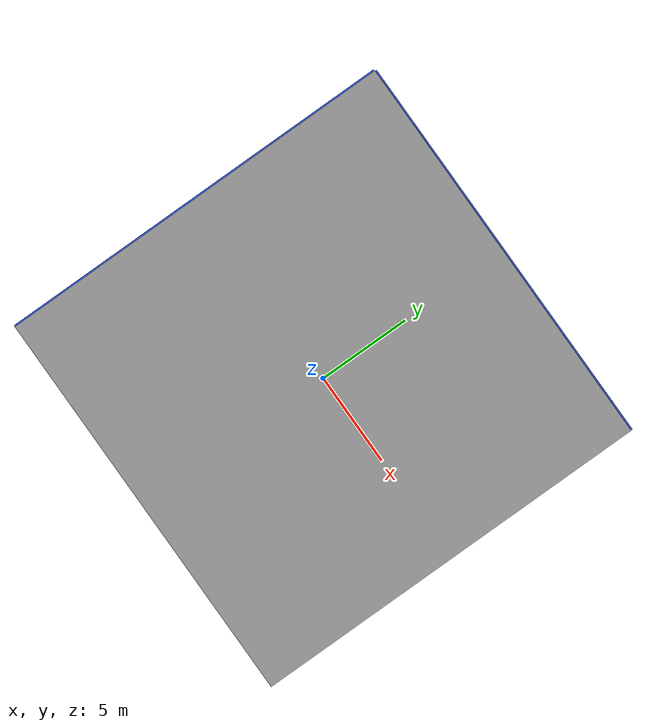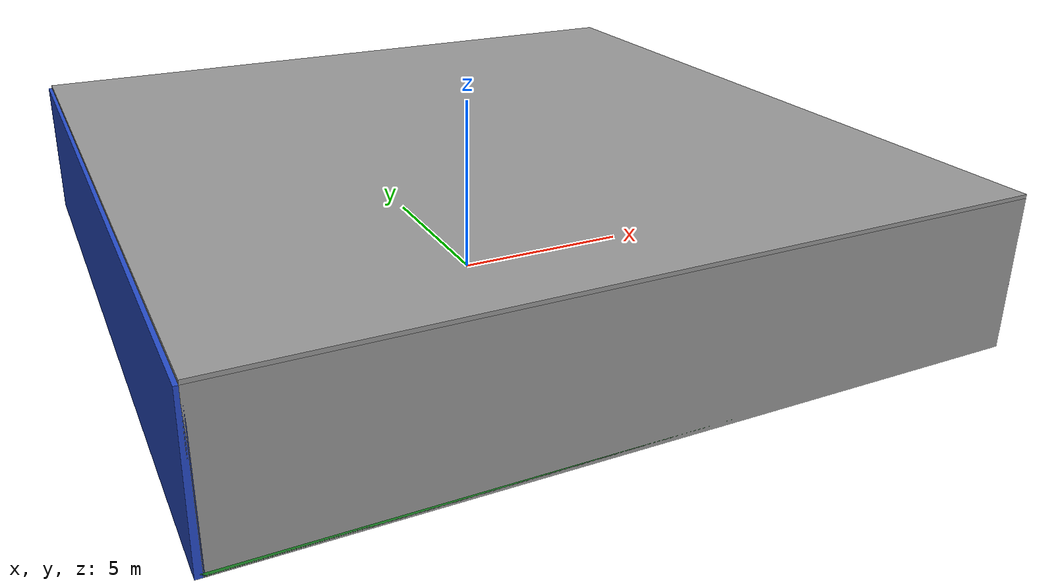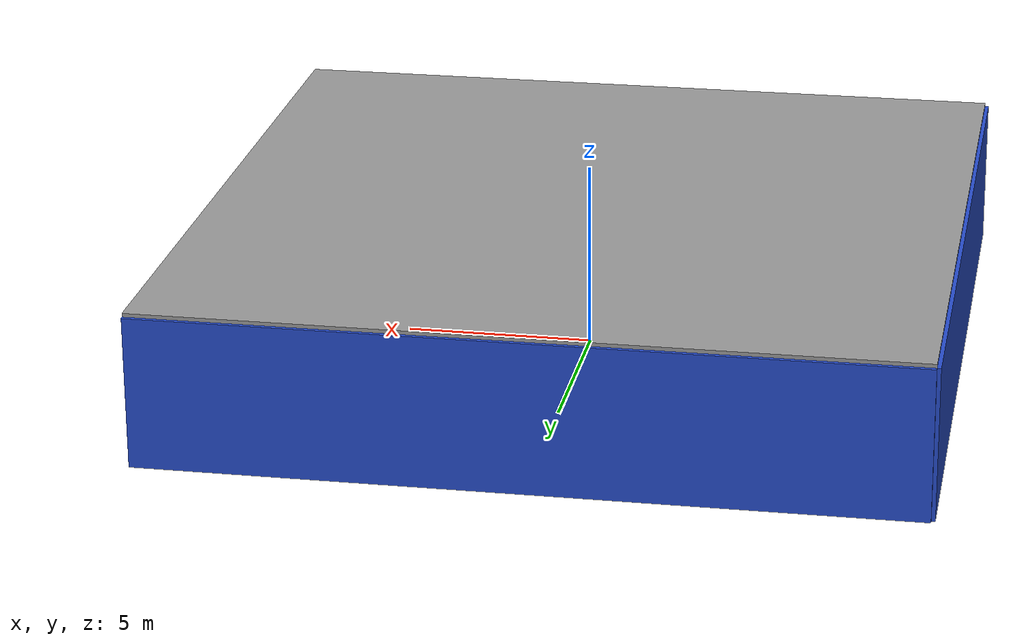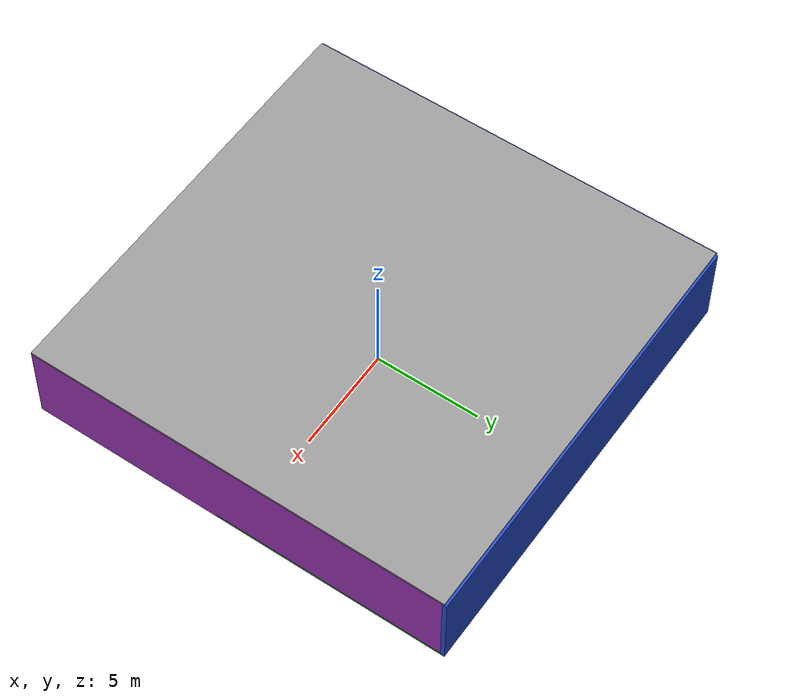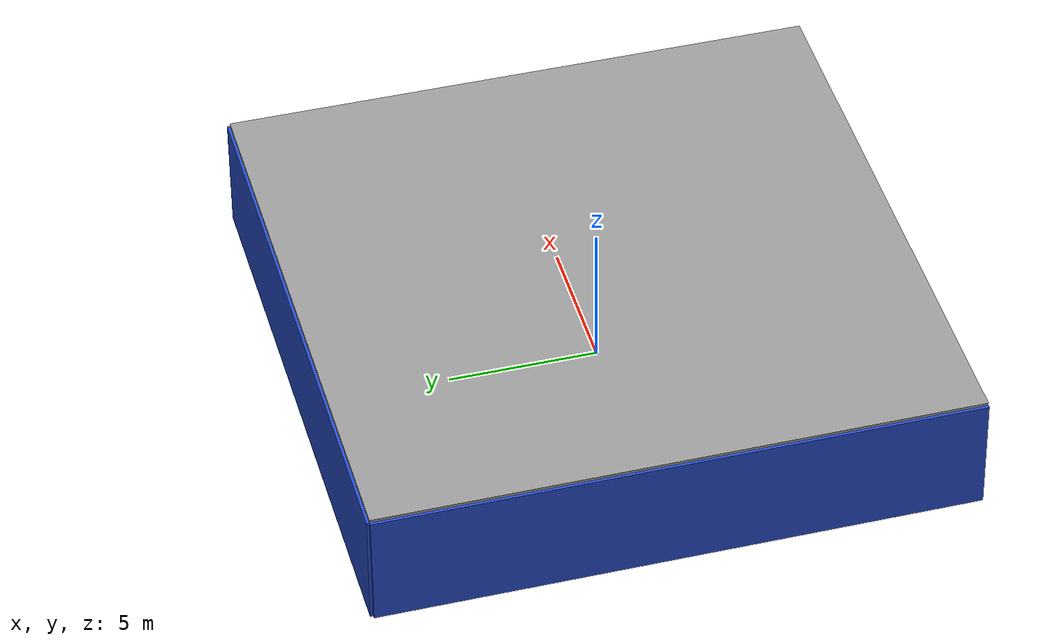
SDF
<sdf version="1.4">
 <world name="default">
  <physics type="ode">
   <max_step_size>0.001</max_step_size>
   <real_time_factor>1</real_time_factor>
   <real_time_update_rate>1000</real_time_update_rate>
   <gravity>0 0 -9.8</gravity>
  </physics>
  <scene><ambient>0.4 0.4 0.4 1</ambient><background>0.7 0.7 0.7 1</background><shadows>1</shadows></scene>
  <model name="Surrounding">
   <static>1</static>
   <link name="Ceiling">
    <collision name="Ceiling_Collision"><geometry><box><size>20 20 0.1</size></box></geometry></collision>
    <visual name="Ceiling_Visual">
     <geometry><box><size>20 20 0.1</size></box></geometry>
     <material>
      <script><uri>file://media/materials/scripts/gazebo.material</uri><name>Gazebo/GreyGradientSky</name></script>
     </material>
    </visual>
    <pose>0 0 4.05 0 0 0</pose>
   </link>
   <link name="Wall_South">
    <collision name="Wall_South_Collision">
     <geometry><box><size>20 0 4</size></box></geometry>
     <pose>0 0 2 0 -0 0</pose>
    </collision>
    <visual name="Wall_South_Visual">
     <pose>0 0 2 0 -0 0</pose>
     <geometry><box><size>20 0 4</size></box></geometry>
     <material>
      <script><uri>file://media/materials/scripts/gazebo.material</uri><name>Gazebo/GreyGradientSky</name></script>
     </material>
    </visual>
    <velocity_decay><linear>0</linear><angular>0</angular></velocity_decay>
    <pose>0 -10 0 0 -0 0</pose>
   </link>
   <link name="Wall_East">
    <collision name="Wall_21_Collision">
     <geometry><box><size>20 0 4</size></box></geometry>
     <pose>0 0 2 0 -0 0</pose>
    </collision>
    <visual name="Wall_21_Visual">
     <pose>0 0 2 0 -0 0</pose>
     <geometry><box><size>20 0 4</size></box></geometry>
     <material>
      <script><uri>file://media/materials/scripts/gazebo.material</uri><name>Gazebo/PurpleGlow</name></script>
     </material>
    </visual>
    <velocity_decay><linear>0</linear><angular>0</angular></velocity_decay>
    <pose>10 0 0 0 -0 1.5708</pose>
   </link>
   <link name="Wall_North">
    <collision name="Wall_22_Collision">
     <geometry><box><size>20 0.2 4</size></box></geometry>
     <pose>0 0 2 0 -0 0</pose>
    </collision>
    <visual name="Wall_22_Visual">
     <pose>0 0 2 0 -0 0</pose>
     <geometry><box><size>20 0.2 4</size></box></geometry>
     <material>
      <script><uri>file://media/materials/scripts/gazebo.material</uri><name>Gazebo/Blue</name></script>
     </material>
    </visual>
    <velocity_decay><linear>0</linear><angular>0</angular></velocity_decay>
    <pose>0 10 0 0 -0 0</pose>
   </link>
   <link name="Wall_West">
    <collision name="Wall_23_Collision">
     <geometry><box><size>20 0.2 4</size></box></geometry>
     <pose>0 0 2 0 -0 0</pose>
    </collision>
    <visual name="Wall_23_Visual">
     <pose>0 0 2 0 -0 0</pose>
     <geometry><box><size>20 0.2 4</size></box></geometry>
     <material>
      <script><uri>file://media/materials/scripts/gazebo.material</uri><name>Gazebo/Blue</name></script>
     </material>
    </visual>
    <velocity_decay><linear>0</linear><angular>0</angular></velocity_decay>
    <pose>-10 0 0 0 0 -1.5708</pose>
   </link>
   <link name="Ground_link">
    <collision name="collision">
     <pose>0 0 .05 0 -0 0</pose>
     <geometry><box><size>20 20 0.1</size></box></geometry>
    </collision>
    <visual name="visual">
     <pose>0 0 .05 0 -0 0</pose>
     <geometry><box><size>20 20 0.1</size></box></geometry>
     <material>
      <script><uri>file://media/materials/scripts/gazebo.material</uri><name>Gazebo/Green</name></script>
     </material>
    </visual>
   </link>
   <static>1</static>
  </model>
  <spherical_coordinates>
   <surface_model>EARTH_WGS84</surface_model>
   <latitude_deg>0</latitude_deg>
   <longitude_deg>0</longitude_deg>
   <elevation>0</elevation>
   <heading_deg>0</heading_deg>
  </spherical_coordinates>
  <light name="lightball_0" type="diffuse">
   <diffuse>0.8 0.8 0.8 1</diffuse>
   <specular>0.2 0.2 0.2 1</specular>
   <attenuation>
    <range>100</range>
    <constant>0.7</constant>
    <linear>0.01</linear>
    <quadratic>0.001</quadratic>
   </attenuation>
   <direction>-0.5 0.1 -0.9</direction>
   <pose>-6.96508146237 -3.79509964964 1.19703322617 0 0 0</pose>
  </light>
  <light name="lightball_1" type="diffuse">
   <diffuse>0.8 0.8 0.8 1</diffuse>
   <specular>0.2 0.2 0.2 1</specular>
   <attenuation>
    <range>100</range>
    <constant>0.7</constant>
    <linear>0.01</linear>
    <quadratic>0.001</quadratic>
   </attenuation>
   <direction>-0.5 0.1 -0.9</direction>
   <pose>0.504669005715 -9.80351720036 2.13400405366 0 0 0</pose>
  </light>
  <light name="lightball_2" type="diffuse">
   <diffuse>0.8 0.8 0.8 1</diffuse>
   <specular>0.2 0.2 0.2 1</specular>
   <attenuation>
    <range>100</range>
    <constant>0.7</constant>
    <linear>0.01</linear>
    <quadratic>0.001</quadratic>
   </attenuation>
   <direction>-0.5 0.1 -0.9</direction>
   <pose>-6.69450441976 -3.04275334917 0.592231045507 0 0 0</pose>
  </light>
  <light name="lightball_3" type="diffuse">
   <diffuse>0.8 0.8 0.8 1</diffuse>
   <specular>0.2 0.2 0.2 1</specular>
   <attenuation>
    <range>100</range>
    <constant>0.7</constant>
    <linear>0.01</linear>
    <quadratic>0.001</quadratic>
   </attenuation>
   <direction>-0.5 0.1 -0.9</direction>
   <pose>-0.0400253870945 -3.80046876415 3.75823307335 0 0 0</pose>
  </light>
  <light name="lightball_4" type="diffuse">
   <diffuse>0.8 0.8 0.8 1</diffuse>
   <specular>0.2 0.2 0.2 1</specular>
   <attenuation>
    <range>100</range>
    <constant>0.7</constant>
    <linear>0.01</linear>
    <quadratic>0.001</quadratic>
   </attenuation>
   <direction>-0.5 0.1 -0.9</direction>
   <pose>2.57564220693 -4.03529300041 2.46754863949 0 0 0</pose>
  </light>
  <light name="lightball_5" type="diffuse">
   <diffuse>0.8 0.8 0.8 1</diffuse>
   <specular>0.2 0.2 0.2 1</specular>
   <attenuation>
    <range>100</range>
    <constant>0.7</constant>
    <linear>0.01</linear>
    <quadratic>0.001</quadratic>
   </attenuation>
   <direction>-0.5 0.1 -0.9</direction>
   <pose>-0.957697952893 9.14843284362 1.74014965216 0 0 0</pose>
  </light>
  <include><uri>model://cabinet</uri><pose>-4.92214815048 7.42252622539 0 0 0 2.93182271262</pose></include>
  <include>
   <uri>model://construction_cone</uri>
   <pose>-0.978956090081 6.80353640626 0 0 0 0.735062247913</pose>
  </include>
  <include>
   <uri>model://construction_cone</uri>
   <pose>2.03057919425 0.854243374453 0 0 0 0.654278125154</pose>
  </include>
 </world>
</sdf>

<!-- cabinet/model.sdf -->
<sdf version="1.5">
  <model name="cabinet">
    <static>true</static>
    <link name="cabinet_bottom_plate">
      <inertial>
        <pose>0 0 -1 0 0 0</pose>
        <inertia>
          <ixx>2.050000</ixx>
          <ixy>0</ixy>
          <ixz>0</ixz>
          <iyy>2.050000</iyy>
          <iyz>0</iyz>
          <izz>2.050000</izz>
        </inertia>
        <mass>25.000000</mass>
      </inertial>
      <collision name="cabinet_bottom_plate_geom">
        <pose>0 0 0.010000 0 0 0</pose>
        <geometry>
          <box>
            <size>0.450000 0.450000 0.020000</size>
          </box>
        </geometry>
      </collision>
      <visual name="cabinet_bottom_plate_geom_visual">
        <pose>0 0 0.010000 0 0 0</pose>
        <geometry>
          <box>
            <size>0.450000 0.450000 0.020000</size>
          </box>
        </geometry>
        <material>
          <script>
            <uri>model://media/materials/scripts/gazebo.material</uri>
            <name>Gazebo/Wood</name>
          </script>
        </material>
      </visual>
      <collision name="cabinet_bottom_plate_geom_cabinet_back_plate">
        <pose>0.235000 0 0.510000 0 0 0</pose>
        <geometry>
          <box>
            <size>0.020000 0.450000 1.020000</size>
          </box>
        </geometry>
      </collision>
      <visual name="cabinet_bottom_plate_geom_cabinet_back_plate_visual">
        <pose>0.235000 0 0.510000 0 0 0</pose>
        <geometry>
          <box>
            <size>0.020000 0.450000 1.020000</size>
          </box>
        </geometry>
        <material>
          <script>
            <uri>model://media/materials/scripts/gazebo.material</uri>
            <name>Gazebo/Wood</name>
          </script>
        </material>
      </visual>
      <collision name="cabinet_bottom_plate_geom_cabinet_left_plate">
        <pose>0 0.235000 0.510000 0 0 0</pose>
        <geometry>
          <box>
            <size>0.450000 0.020000 1.020000</size>
          </box>
        </geometry>
      </collision>
      <visual name="cabinet_bottom_plate_geom_cabinet_left_plate_visual">
        <pose>0 0.235000 0.510000 0 0 0</pose>
        <geometry>
          <box>
            <size>0.450000 0.020000 1.020000</size>
          </box>
        </geometry>
        <material>
          <script>
            <uri>model://media/materials/scripts/gazebo.material</uri>
            <name>Gazebo/Wood</name>
          </script>
        </material>
      </visual>
      <collision name="cabinet_bottom_plate_geom_cabinet_middle_plate">
        <pose>0 0 0.510000 0 0 0</pose>
        <geometry>
          <box>
            <size>0.450000 0.450000 0.020000</size>
          </box>
        </geometry>
      </collision>
      <visual name="cabinet_bottom_plate_geom_cabinet_middle_plate_visual">
        <pose>0 0 0.510000 0 0 0</pose>
        <geometry>
          <box>
            <size>0.450000 0.450000 0.020000</size>
          </box>
        </geometry>
        <material>
          <script>
            <uri>model://media/materials/scripts/gazebo.material</uri>
            <name>Gazebo/Wood</name>
          </script>
        </material>
      </visual>
      <collision name="cabinet_bottom_plate_geom_cabinet_right_plate">
        <pose>0 -0.235000 0.510000 0 0 0</pose>
        <geometry>
          <box>
            <size>0.450000 0.020000 1.020000</size>
          </box>
        </geometry>
      </collision>
      <visual name="cabinet_bottom_plate_geom_cabinet_right_plate_visual">
        <pose>0 -0.235000 0.510000 0 0 0</pose>
        <geometry>
          <box>
            <size>0.450000 0.020000 1.020000</size>
          </box>
        </geometry>
        <material>
          <script>
            <uri>model://media/materials/scripts/gazebo.material</uri>
            <name>Gazebo/Wood</name>
          </script>
        </material>
      </visual>
      <collision name="cabinet_bottom_plate_geom_cabinet_top_plate">
        <pose>0 0 1.010000 0 0 0</pose>
        <geometry>
          <box>
            <size>0.450000 0.450000 0.020000</size>
          </box>
        </geometry>
      </collision>
      <visual name="cabinet_bottom_plate_geom_cabinet_top_plate_visual">
        <pose>0 0 1.010000 0 0 0</pose>
        <geometry>
          <box>
            <size>0.450000 0.450000 0.020000</size>
          </box>
        </geometry>
        <material>
          <script>
            <uri>model://media/materials/scripts/gazebo.material</uri>
            <name>Gazebo/Wood</name>
          </script>
        </material>
      </visual>
    </link>
  </model>
</sdf>

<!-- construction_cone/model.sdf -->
<sdf version="1.5">
  <model name="Construction Cone">
    <link name="link">
      <collision name="collision">
        <geometry>
          <mesh>
            <scale>10 10 10</scale>
            <uri>file://isr-testbed/construction_cone/meshes/construction_cone.dae</uri>
          </mesh>
        </geometry>
      </collision>
      <visual name="visual">
        <geometry>
          <mesh>
            <scale>10 10 10</scale>
            <uri>file://isr-testbed/construction_cone/meshes/construction_cone.dae</uri>
          </mesh>
        </geometry>
      </visual>
    </link>
  </model>
</sdf>
